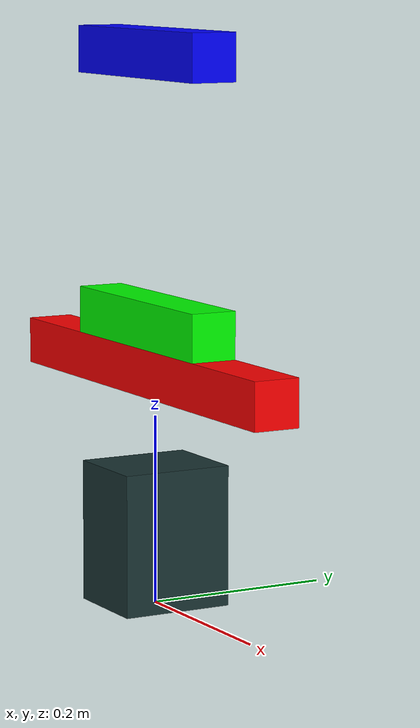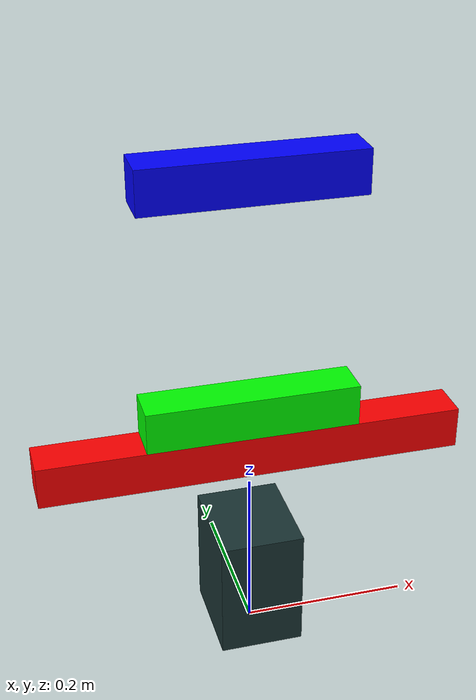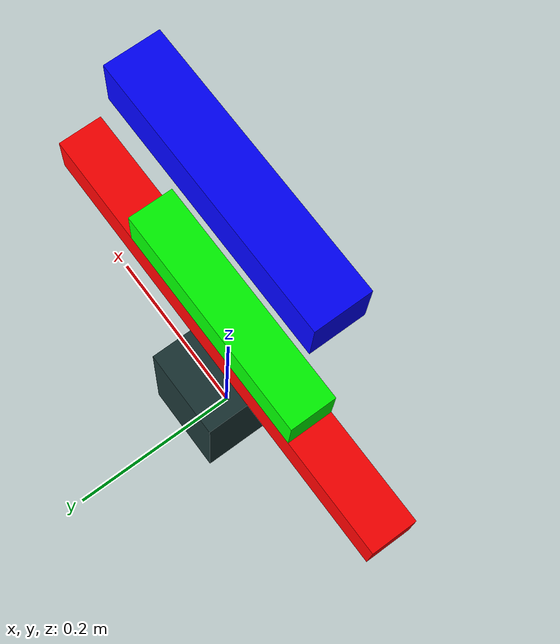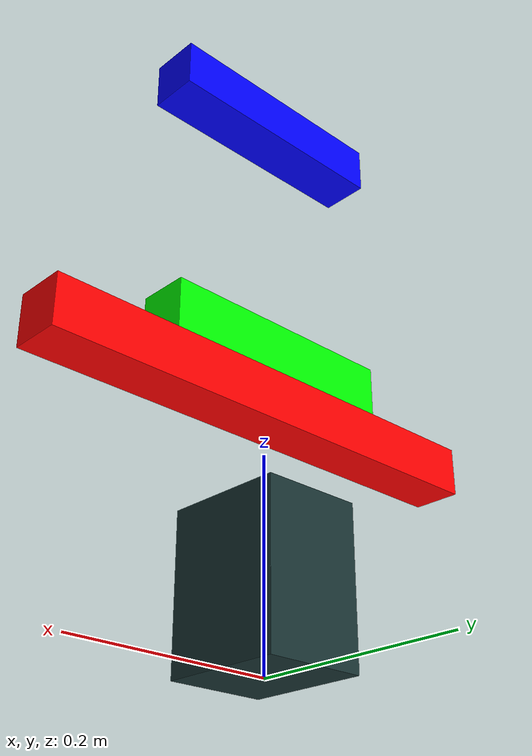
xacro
<?xml version="1.0" encoding="utf-8"?>

<robot name="robot_scara" xmlns:xacros="http://ros/wiki/xacro" >

    <link name="base_link">
        <visual>
            <origin xyz="0.0 0.0 0.075" rpy="0.0 0.0 0.0"/>
            <geometry>
                <box size="0.1 0.12 0.15"/>
            </geometry>
            <material name="brown">
                <color rgba="0.1 0.2 0.2 1.0" />
            </material>
        </visual>
        <collision>
            <origin xyz="0.0 0.0 0.075" rpy="0.0 0.0 0.0"/>
            <geometry>
                <box size="0.1 0.12 0.15"/>
            </geometry>
        </collision>
        <inertial>
            <mass value="0.5"/>
            <origin xyz="0.0 0.0 0.0" rpy="0.0 0.0 0.0"/>
            <inertia ixx="0.1" ixy="0.0" ixz="0.0" iyy="1.0" iyz="0.0" izz="1.0"/>
        </inertial>
    </link>

    <link name="link_1">
        <visual>
            <origin xyz="0.0 0.0 0.25" rpy="0.0 0.0 0.0"/>
            <geometry>
                <box size="0.5 0.05 0.05"/>
            </geometry>
            <material name="red">
                <color rgba="1.0 0.0 0.0 1.0" />
            </material>
        </visual>
        <collision>
            <origin xyz="0.025 0.0 0.0" rpy="0.0 0.0 0.0"/>
            <geometry>
                <box size="0.25 0.05 0.05"/>
            </geometry>
        </collision>
        <inertial>
            <mass value="0.3"/>
            <origin xyz="0.0 0.0 0.0" rpy="0.0 0.0 0.0"/>
            <inertia ixx="0.1" ixy="0.0" ixz="0.0" iyy="1.0" iyz="0.0" izz="1.0"/>
        </inertial>
    </link>

    <link name="link_2">
        <visual>
            <origin xyz="0.0 0.0 0.25" rpy="0.0 0.0 0.0"/>
            <geometry>
                <box size="0.25 0.05 0.05"/>
            </geometry>
            <material name="green">
                <color rgba="0.0 1.0 0.0 1.0" />
            </material>
        </visual>
        <collision>
            <origin xyz="0.025 0.0 0.25" rpy="0.0 0.0 0.0"/>
            <geometry>
                <box size="0.25 0.05 0.05"/>
            </geometry>
        </collision>
        <inertial>
            <mass value="0.3"/>
            <origin xyz="0.0 0.0 0.0" rpy="0.0 0.0 0.0"/>
            <inertia ixx="0.1" ixy="0.0" ixz="0.0" iyy="1.0" iyz="0.0" izz="1.0"/>
        </inertial>
    </link>

    <link name="link_3">
        <visual>
            <origin xyz="0.0 0.0 0.25" rpy="0.0 0.0 0.0"/>
            <geometry>
                <box size="0.25 0.05 0.05"/>
            </geometry>
            <material name="blue">
                <color rgba="0.0 0.0 1.0 1.0" />
            </material>
        </visual>
        <collision>
            <origin xyz="0.025 0.0 0.25" rpy="0.0 0.0 0.0"/>
            <geometry>
                <box size="0.25 0.05 0.05"/>
            </geometry>
        </collision>
        <inertial>
            <mass value="0.3"/>
            <origin xyz="0.0 0.0 0.0" rpy="0.0 0.0 0.0"/>
            <inertia ixx="0.1" ixy="0.0" ixz="0.0" iyy="1.0" iyz="0.0" izz="1.0"/>
        </inertial>
    </link>

    <joint name="link_1_joint" type="revolute">
        <parent link="base_link"/>
        <child link="link_1"/>
        <axis xyz="0 0 1"/>
        <limit lower="-3.14159" upper="3.14159" velocity="50.0" effort="1000.0"/>
        <origin xyz="0.0 0 0.0" rpy="0 0 0"/>
    </joint>

    <joint name="link_2_joint" type="revolute">
        <parent link="link_1"/>
        <child link="link_2"/>
        <axis xyz="0 0 1"/>
        <limit lower="-3.14159" upper="3.14159" velocity="50.0" effort="100.0"/>
        <origin xyz="0.0 0.0 0.05" rpy="0 0 0"/>
    </joint>

    <joint name="link_3_joint" type="revolute">
        <parent link="link_2"/>
        <child link="link_3"/>
        <axis xyz="0 0 1"/>
        <limit lower="-3.14159" upper="3.14159" velocity="50.0" effort="100.0"/>
        <origin xyz="0.0 0.0 0.28" rpy="0 0 0"/>
    </joint>

</robot>
